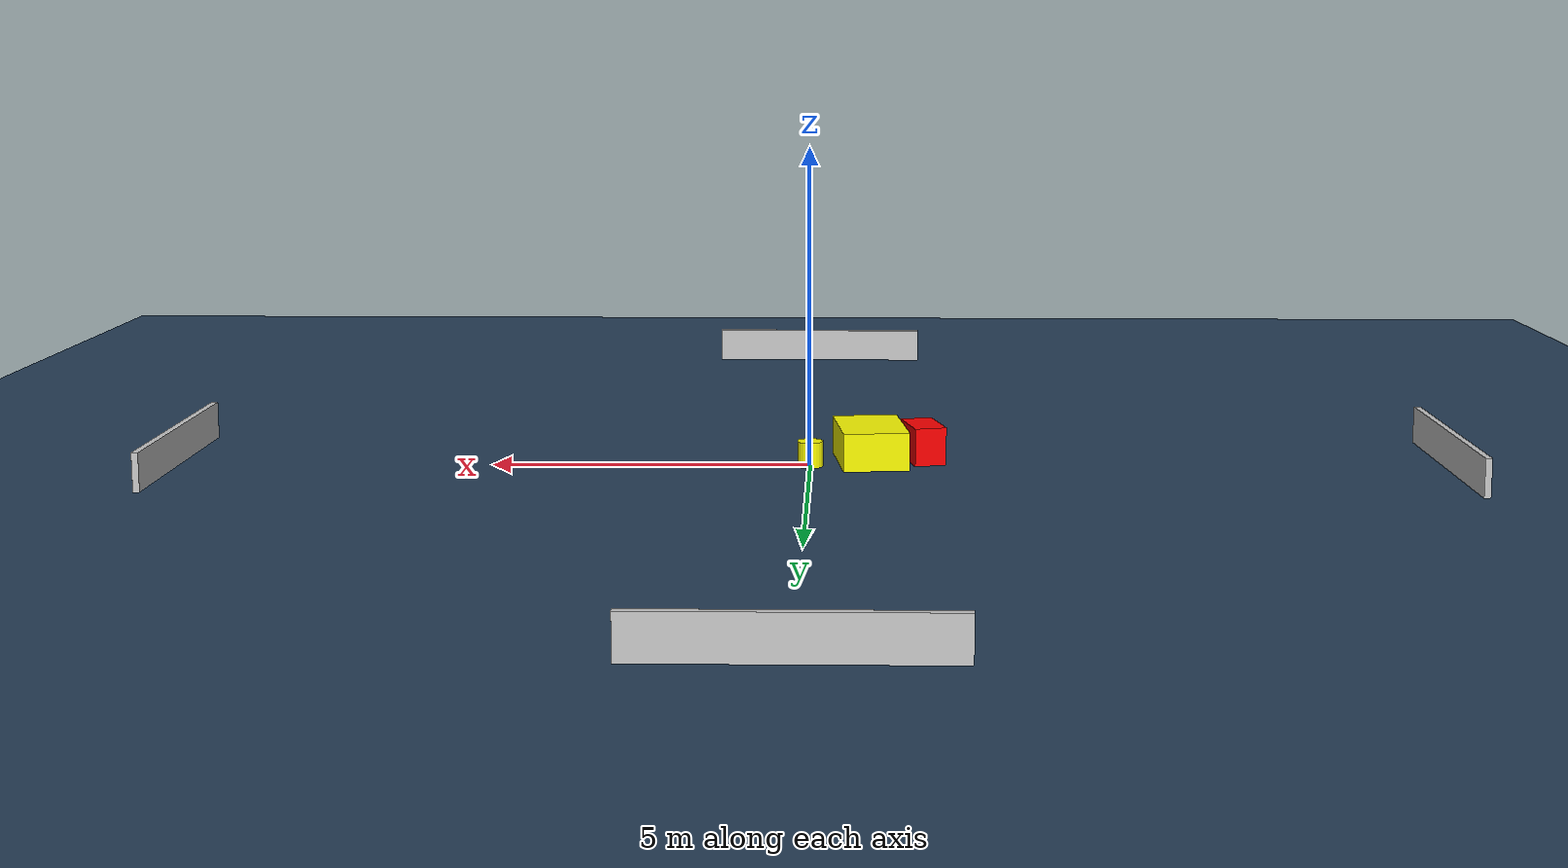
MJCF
<?xml version="1.0" ?>
<mujoco model="generated_environment">
  <option timestep="0.01" integrator="RK4" cone="elliptic"/>
  <default>
    <geom density="1"/>
  </default>
  <asset>
    <texture builtin="gradient" height="3072" name="skybox" rgb1="0.3 0.5 0.7" rgb2="0 0 0" type="skybox" width="512"/>
    <texture builtin="checker" height="300" name="groundplane" rgb1="0.2 0.3 0.4" rgb2="0.1 0.2 0.3" type="2d" width="300"/>
    <material name="groundplane" reflectance="0.2" texrepeat="5 5" texture="groundplane"/>
  </asset>
  <worldbody>
    <light dir="0 0 -1" directional="true" pos="0 0 1.5"/>
    <geom condim="3" friction="0.5 0.005 0.001" material="groundplane" name="floor" pos="0 0 0" size="0 0 0.05" type="plane"/>
    <body name="walls">
      <geom name="wall_1" condim="4" pos="-10.0 0.0 0.3" rgba="0.800000011920929 0.800000011920929 0.800000011920929 1.0" size="0.05 2.0 0.3" type="box"/>
      <geom name="wall_2" condim="4" pos="10.0 0.0 0.3" rgba="0.800000011920929 0.800000011920929 0.800000011920929 1.0" size="0.05 2.0 0.3" type="box"/>
      <geom name="wall_3" condim="4" pos="0.0 -10.0 0.3" rgba="0.800000011920929 0.800000011920929 0.800000011920929 1.0" size="2.0 0.05 0.3" type="box"/>
      <geom name="wall_4" condim="4" pos="0.0 10.0 0.3" rgba="0.800000011920929 0.800000011920929 0.800000011920929 1.0" size="2.0 0.05 0.3" type="box"/>
    </body>
    <body name="robot">
      <joint name="joint_x" type="slide" pos="0 0 0" axis="1 0 0"/>
      <joint name="joint_y" type="slide" pos="0 0 0" axis="0 1 0"/>
      <geom name="robot" type="cylinder" pos="0.0 0.0 0.2" size="0.2 0.2 0.0" mass="5.0" friction="1.0 0.005 0.0001" condim="4" rgba="1.0 1.0 0.0 1.0"/>
    </body>
    <body name="obstacle_1_movable">
      <geom name="obstacle_1_movable" condim="4" pos="-0.9505590281968566 -0.3556748691254334 0.3" euler="0 0 186.9769505578198" friction="0.0 0.005 0.001" rgba="1.0 1.0 0.0 1.0" size="0.5196016824682463 0.7483431237665952 0.3" type="box" mass="0.1"/>
      <joint type="free"/>
    </body>
    <body name="obstacle_2_static">
      <geom name="obstacle_2_static" condim="4" pos="-1.789860565085595 -0.45043018764324844 0.3" euler="0 0 284.109670142332" friction="0.0 0.005 0.001" rgba="1.0 0.0 0.0 1.0" size="0.4241945907754885 0.252465358774911 0.3" type="box"/>
    </body>
  </worldbody>
  <actuator>
    <motor name="actuator_x" joint="joint_x" gear="1" ctrlrange="-1 1"/>
    <motor name="actuator_y" joint="joint_y" gear="1" ctrlrange="-1 1"/>
  </actuator>
</mujoco>
